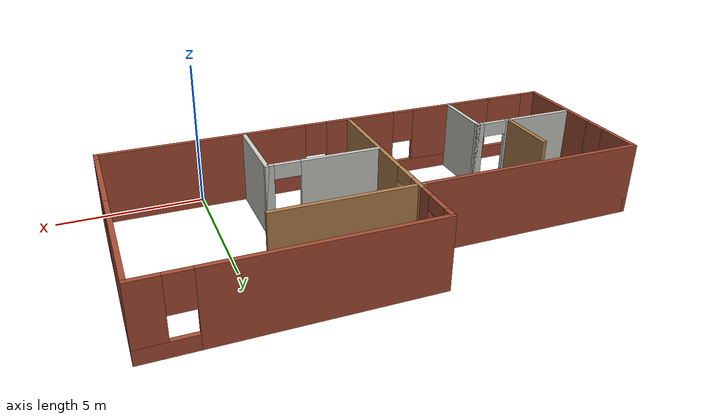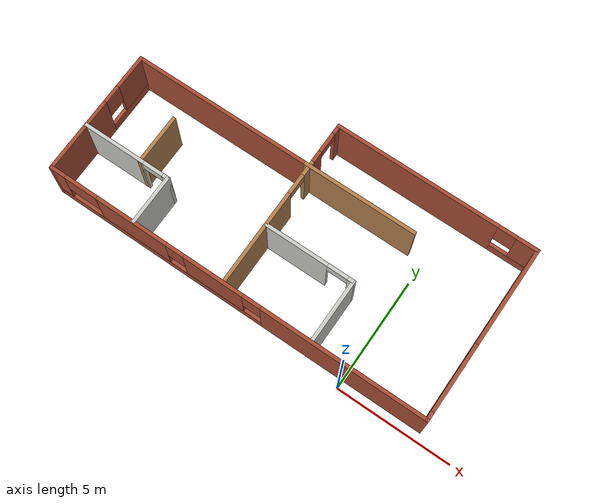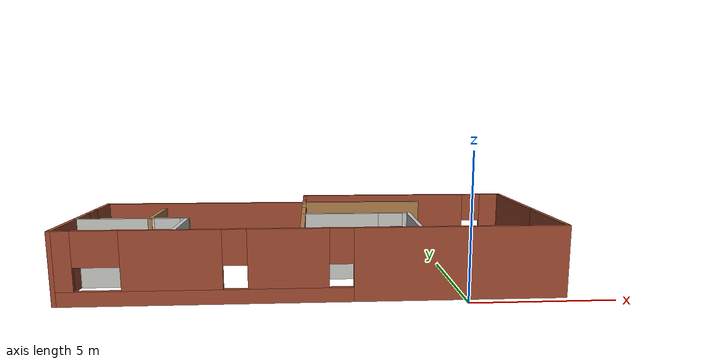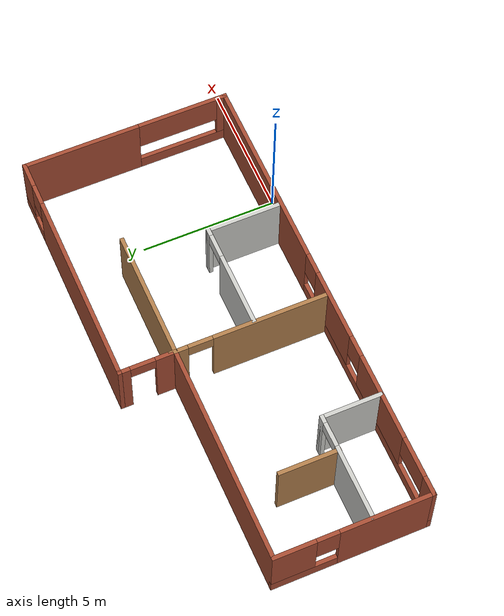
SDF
<?xml version='1.0'?>
<sdf version='1.6'>
  <model name='building'>
    <pose frame=''>-5.02487 4.21539 0 0 -0 0</pose>
    <link name='Wall_0'>
      <pose frame=''>4 3.8 0 0 -0 0</pose>
      <visual name='Wall_0_Visual_0'>
        <pose frame=''>-0.880795 0 1.25 0 -0 0</pose>
        <geometry>
          <box>
            <size>7.23841 0.15 2.5</size>
          </box>
        </geometry>
        <material>
          <script>
            <uri>file://media/materials/scripts/gazebo.material</uri>
            <name>Gazebo/Bricks</name>
          </script>
          <ambient>1 1 1 1</ambient>
        </material>
        <meta>
          <layer>0</layer>
        </meta>
      </visual>
      <collision name='Wall_0_Collision_0'>
        <geometry>
          <box>
            <size>7.23841 0.15 2.5</size>
          </box>
        </geometry>
        <pose frame=''>-0.880795 0 1.25 0 -0 0</pose>
      </collision>
      <visual name='Wall_0_Visual_1'>
        <pose frame=''>3.61921 0 0.25 0 -0 0</pose>
        <geometry>
          <box>
            <size>1.76159 0.15 0.5</size>
          </box>
        </geometry>
        <material>
          <script>
            <uri>file://media/materials/scripts/gazebo.material</uri>
            <name>Gazebo/Bricks</name>
          </script>
          <ambient>1 1 1 1</ambient>
        </material>
        <meta>
          <layer>0</layer>
        </meta>
      </visual>
      <collision name='Wall_0_Collision_1'>
        <geometry>
          <box>
            <size>1.76159 0.15 0.5</size>
          </box>
        </geometry>
        <pose frame=''>3.61921 0 0.25 0 -0 0</pose>
      </collision>
      <visual name='Wall_0_Visual_2'>
        <pose frame=''>4.01921 0 1.5 0 -0 0</pose>
        <geometry>
          <box>
            <size>0.96159 0.15 2</size>
          </box>
        </geometry>
        <material>
          <script>
            <uri>file://media/materials/scripts/gazebo.material</uri>
            <name>Gazebo/Bricks</name>
          </script>
          <ambient>1 1 1 1</ambient>
        </material>
        <meta>
          <layer>0</layer>
        </meta>
      </visual>
      <collision name='Wall_0_Collision_2'>
        <geometry>
          <box>
            <size>0.96159 0.15 2</size>
          </box>
        </geometry>
        <pose frame=''>4.01921 0 1.5 0 -0 0</pose>
      </collision>
      <visual name='Wall_0_Visual_3'>
        <pose frame=''>3.13841 0 1.9 0 -0 0</pose>
        <geometry>
          <box>
            <size>0.8 0.15 1.2</size>
          </box>
        </geometry>
        <material>
          <script>
            <uri>file://media/materials/scripts/gazebo.material</uri>
            <name>Gazebo/Bricks</name>
          </script>
          <ambient>1 1 1 1</ambient>
        </material>
        <meta>
          <layer>0</layer>
        </meta>
      </visual>
      <collision name='Wall_0_Collision_3'>
        <geometry>
          <box>
            <size>0.8 0.15 1.2</size>
          </box>
        </geometry>
        <pose frame=''>3.13841 0 1.9 0 -0 0</pose>
      </collision>
    </link>
    <link name='Wall_1'>
      <pose frame=''>8.425 0 0 0 0 -1.5708</pose>
      <visual name='Wall_1_Visual_0'>
        <pose frame=''>-1.69542 0 1.25 0 -0 0</pose>
        <geometry>
          <box>
            <size>4.35915 0.15 2.5</size>
          </box>
        </geometry>
        <material>
          <script>
            <uri>file://media/materials/scripts/gazebo.material</uri>
            <name>Gazebo/Bricks</name>
          </script>
          <ambient>1 1 1 1</ambient>
        </material>
        <meta>
          <layer>0</layer>
        </meta>
      </visual>
      <collision name='Wall_1_Collision_0'>
        <geometry>
          <box>
            <size>4.35915 0.15 2.5</size>
          </box>
        </geometry>
        <pose frame=''>-1.69542 0 1.25 0 -0 0</pose>
      </collision>
      <visual name='Wall_1_Visual_1'>
        <pose frame=''>2.17957 0 0.25 0 -0 0</pose>
        <geometry>
          <box>
            <size>3.39085 0.15 0.5</size>
          </box>
        </geometry>
        <material>
          <script>
            <uri>file://media/materials/scripts/gazebo.material</uri>
            <name>Gazebo/Bricks</name>
          </script>
          <ambient>1 1 1 1</ambient>
        </material>
        <meta>
          <layer>0</layer>
        </meta>
      </visual>
      <collision name='Wall_1_Collision_1'>
        <geometry>
          <box>
            <size>3.39085 0.15 0.5</size>
          </box>
        </geometry>
        <pose frame=''>2.17957 0 0.25 0 -0 0</pose>
      </collision>
      <visual name='Wall_1_Visual_2'>
        <pose frame=''>3.6617 0 1.5 0 -0 0</pose>
        <geometry>
          <box>
            <size>0.426599 0.15 2</size>
          </box>
        </geometry>
        <material>
          <script>
            <uri>file://media/materials/scripts/gazebo.material</uri>
            <name>Gazebo/Bricks</name>
          </script>
          <ambient>1 1 1 1</ambient>
        </material>
        <meta>
          <layer>0</layer>
        </meta>
      </visual>
      <collision name='Wall_1_Collision_2'>
        <geometry>
          <box>
            <size>0.426599 0.15 2</size>
          </box>
        </geometry>
        <pose frame=''>3.6617 0 1.5 0 -0 0</pose>
      </collision>
      <visual name='Wall_1_Visual_3'>
        <pose frame=''>1.96628 0 1.9 0 -0 0</pose>
        <geometry>
          <box>
            <size>2.96425 0.15 1.2</size>
          </box>
        </geometry>
        <material>
          <script>
            <uri>file://media/materials/scripts/gazebo.material</uri>
            <name>Gazebo/Bricks</name>
          </script>
          <ambient>1 1 1 1</ambient>
        </material>
        <meta>
          <layer>0</layer>
        </meta>
      </visual>
      <collision name='Wall_1_Collision_3'>
        <geometry>
          <box>
            <size>2.96425 0.15 1.2</size>
          </box>
        </geometry>
        <pose frame=''>1.96628 0 1.9 0 -0 0</pose>
      </collision>
    </link>
    <link name='Wall_19'>
      <collision name='Wall_19_Collision'>
        <geometry>
          <box>
            <size>5 0.15 2.5</size>
          </box>
        </geometry>
        <pose frame=''>0 0 1.25 0 -0 0</pose>
      </collision>
      <visual name='Wall_19_Visual'>
        <pose frame=''>0 0 1.25 0 -0 0</pose>
        <geometry>
          <box>
            <size>5 0.15 2.5</size>
          </box>
        </geometry>
        <material>
          <script>
            <uri>file://media/materials/scripts/gazebo.material</uri>
            <name>Gazebo/Wood</name>
          </script>
          <ambient>1 1 1 1</ambient>
        </material>
        <meta>
          <layer>0</layer>
        </meta>
      </visual>
      <pose frame=''>1.85 1.8 0 0 -0 0</pose>
    </link>
    <link name='Wall_2'>
      <pose frame=''>0 -3.8 0 0 -0 3.14159</pose>
      <visual name='Wall_2_Visual_0'>
        <pose frame=''>-4.87885 0 1.25 0 -0 0</pose>
        <geometry>
          <box>
            <size>7.24229 0.15 2.5</size>
          </box>
        </geometry>
        <material>
          <script>
            <uri>file://media/materials/scripts/gazebo.material</uri>
            <name>Gazebo/Bricks</name>
          </script>
          <ambient>1 1 1 1</ambient>
        </material>
        <meta>
          <layer>0</layer>
        </meta>
      </visual>
      <collision name='Wall_2_Collision_0'>
        <geometry>
          <box>
            <size>7.24229 0.15 2.5</size>
          </box>
        </geometry>
        <pose frame=''>-4.87885 0 1.25 0 -0 0</pose>
      </collision>
      <visual name='Wall_2_Visual_1'>
        <pose frame=''>3.62115 0 0.25 0 -0 0</pose>
        <geometry>
          <box>
            <size>9.75771 0.15 0.5</size>
          </box>
        </geometry>
        <material>
          <script>
            <uri>file://media/materials/scripts/gazebo.material</uri>
            <name>Gazebo/Bricks</name>
          </script>
          <ambient>1 1 1 1</ambient>
        </material>
        <meta>
          <layer>0</layer>
        </meta>
      </visual>
      <collision name='Wall_2_Collision_1'>
        <geometry>
          <box>
            <size>9.75771 0.15 0.5</size>
          </box>
        </geometry>
        <pose frame=''>3.62115 0 0.25 0 -0 0</pose>
      </collision>
      <visual name='Wall_2_Visual_2'>
        <pose frame=''>0.877088 0 1.5 0 -0 0</pose>
        <geometry>
          <box>
            <size>2.66959 0.15 2</size>
          </box>
        </geometry>
        <material>
          <script>
            <uri>file://media/materials/scripts/gazebo.material</uri>
            <name>Gazebo/Bricks</name>
          </script>
          <ambient>1 1 1 1</ambient>
        </material>
        <meta>
          <layer>0</layer>
        </meta>
      </visual>
      <collision name='Wall_2_Collision_2'>
        <geometry>
          <box>
            <size>2.66959 0.15 2</size>
          </box>
        </geometry>
        <pose frame=''>0.877088 0 1.5 0 -0 0</pose>
      </collision>
      <visual name='Wall_2_Visual_3'>
        <pose frame=''>4.64106 0 1.5 0 -0 0</pose>
        <geometry>
          <box>
            <size>3.25836 0.15 2</size>
          </box>
        </geometry>
        <material>
          <script>
            <uri>file://media/materials/scripts/gazebo.material</uri>
            <name>Gazebo/Bricks</name>
          </script>
          <ambient>1 1 1 1</ambient>
        </material>
        <meta>
          <layer>0</layer>
        </meta>
      </visual>
      <collision name='Wall_2_Collision_3'>
        <geometry>
          <box>
            <size>3.25836 0.15 2</size>
          </box>
        </geometry>
        <pose frame=''>4.64106 0 1.5 0 -0 0</pose>
      </collision>
      <visual name='Wall_2_Visual_4'>
        <pose frame=''>8.13512 0 1.5 0 -0 0</pose>
        <geometry>
          <box>
            <size>0.729757 0.15 2</size>
          </box>
        </geometry>
        <material>
          <script>
            <uri>file://media/materials/scripts/gazebo.material</uri>
            <name>Gazebo/Bricks</name>
          </script>
          <ambient>1 1 1 1</ambient>
        </material>
        <meta>
          <layer>0</layer>
        </meta>
      </visual>
      <collision name='Wall_2_Collision_4'>
        <geometry>
          <box>
            <size>0.729757 0.15 2</size>
          </box>
        </geometry>
        <pose frame=''>8.13512 0 1.5 0 -0 0</pose>
      </collision>
      <visual name='Wall_2_Visual_5'>
        <pose frame=''>-0.857708 0 1.9 0 -0 0</pose>
        <geometry>
          <box>
            <size>0.8 0.15 1.2</size>
          </box>
        </geometry>
        <material>
          <script>
            <uri>file://media/materials/scripts/gazebo.material</uri>
            <name>Gazebo/Bricks</name>
          </script>
          <ambient>1 1 1 1</ambient>
        </material>
        <meta>
          <layer>0</layer>
        </meta>
      </visual>
      <collision name='Wall_2_Collision_5'>
        <geometry>
          <box>
            <size>0.8 0.15 1.2</size>
          </box>
        </geometry>
        <pose frame=''>-0.857708 0 1.9 0 -0 0</pose>
      </collision>
      <visual name='Wall_2_Visual_6'>
        <pose frame=''>2.61188 0 1.9 0 -0 0</pose>
        <geometry>
          <box>
            <size>0.8 0.15 1.2</size>
          </box>
        </geometry>
        <material>
          <script>
            <uri>file://media/materials/scripts/gazebo.material</uri>
            <name>Gazebo/Bricks</name>
          </script>
          <ambient>1 1 1 1</ambient>
        </material>
        <meta>
          <layer>0</layer>
        </meta>
      </visual>
      <collision name='Wall_2_Collision_6'>
        <geometry>
          <box>
            <size>0.8 0.15 1.2</size>
          </box>
        </geometry>
        <pose frame=''>2.61188 0 1.9 0 -0 0</pose>
      </collision>
      <visual name='Wall_2_Visual_7'>
        <pose frame=''>7.02024 0 1.9 0 -0 0</pose>
        <geometry>
          <box>
            <size>1.5 0.15 1.2</size>
          </box>
        </geometry>
        <material>
          <script>
            <uri>file://media/materials/scripts/gazebo.material</uri>
            <name>Gazebo/Bricks</name>
          </script>
          <ambient>1 1 1 1</ambient>
        </material>
        <meta>
          <layer>0</layer>
        </meta>
      </visual>
      <collision name='Wall_2_Collision_7'>
        <geometry>
          <box>
            <size>1.5 0.15 1.2</size>
          </box>
        </geometry>
        <pose frame=''>7.02024 0 1.9 0 -0 0</pose>
      </collision>
    </link>
    <link name='Wall_3'>
      <pose frame=''>-8.425 -1 0 0 -0 1.5708</pose>
      <visual name='Wall_3_Visual_0'>
        <pose frame=''>-1.18298 0 1.25 0 -0 0</pose>
        <geometry>
          <box>
            <size>3.38403 0.15 2.5</size>
          </box>
        </geometry>
        <material>
          <script>
            <uri>file://media/materials/scripts/gazebo.material</uri>
            <name>Gazebo/Bricks</name>
          </script>
          <ambient>1 1 1 1</ambient>
        </material>
        <meta>
          <layer>0</layer>
        </meta>
      </visual>
      <collision name='Wall_3_Collision_0'>
        <geometry>
          <box>
            <size>3.38403 0.15 2.5</size>
          </box>
        </geometry>
        <pose frame=''>-1.18298 0 1.25 0 -0 0</pose>
      </collision>
      <visual name='Wall_3_Visual_1'>
        <pose frame=''>1.69202 0 0.25 0 -0 0</pose>
        <geometry>
          <box>
            <size>2.36597 0.15 0.5</size>
          </box>
        </geometry>
        <material>
          <script>
            <uri>file://media/materials/scripts/gazebo.material</uri>
            <name>Gazebo/Bricks</name>
          </script>
          <ambient>1 1 1 1</ambient>
        </material>
        <meta>
          <layer>0</layer>
        </meta>
      </visual>
      <collision name='Wall_3_Collision_1'>
        <geometry>
          <box>
            <size>2.36597 0.15 0.5</size>
          </box>
        </geometry>
        <pose frame=''>1.69202 0 0.25 0 -0 0</pose>
      </collision>
      <visual name='Wall_3_Visual_2'>
        <pose frame=''>2.09201 0 1.5 0 -0 0</pose>
        <geometry>
          <box>
            <size>1.56597 0.15 2</size>
          </box>
        </geometry>
        <material>
          <script>
            <uri>file://media/materials/scripts/gazebo.material</uri>
            <name>Gazebo/Bricks</name>
          </script>
          <ambient>1 1 1 1</ambient>
        </material>
        <meta>
          <layer>0</layer>
        </meta>
      </visual>
      <collision name='Wall_3_Collision_2'>
        <geometry>
          <box>
            <size>1.56597 0.15 2</size>
          </box>
        </geometry>
        <pose frame=''>2.09201 0 1.5 0 -0 0</pose>
      </collision>
      <visual name='Wall_3_Visual_3'>
        <pose frame=''>0.909029 0 1.9 0 -0 0</pose>
        <geometry>
          <box>
            <size>0.8 0.15 1.2</size>
          </box>
        </geometry>
        <material>
          <script>
            <uri>file://media/materials/scripts/gazebo.material</uri>
            <name>Gazebo/Bricks</name>
          </script>
          <ambient>1 1 1 1</ambient>
        </material>
        <meta>
          <layer>0</layer>
        </meta>
      </visual>
      <collision name='Wall_3_Collision_3'>
        <geometry>
          <box>
            <size>0.8 0.15 1.2</size>
          </box>
        </geometry>
        <pose frame=''>0.909029 0 1.9 0 -0 0</pose>
      </collision>
    </link>
    <link name='Wall_33'>
      <pose frame=''>-6.46953 -1.66385 0 0 -0 0</pose>
      <visual name='Wall_33_Visual_0'>
        <pose frame=''>-0.603054 0 1.25 0 -0 0</pose>
        <geometry>
          <box>
            <size>2.79389 0.15 2.5</size>
          </box>
        </geometry>
        <material>
          <script>
            <uri>file://media/materials/scripts/gazebo.material</uri>
            <name>Gazebo/CeilingTiled</name>
          </script>
          <ambient>1 1 1 1</ambient>
        </material>
        <meta>
          <layer>0</layer>
        </meta>
      </visual>
      <collision name='Wall_33_Collision_0'>
        <geometry>
          <box>
            <size>2.79389 0.15 2.5</size>
          </box>
        </geometry>
        <pose frame=''>-0.603054 0 1.25 0 -0 0</pose>
      </collision>
      <visual name='Wall_33_Visual_1'>
        <pose frame=''>1.84695 0 1.25 0 -0 0</pose>
        <geometry>
          <box>
            <size>0.306107 0.15 2.5</size>
          </box>
        </geometry>
        <material>
          <script>
            <uri>file://media/materials/scripts/gazebo.material</uri>
            <name>Gazebo/CeilingTiled</name>
          </script>
          <ambient>1 1 1 1</ambient>
        </material>
        <meta>
          <layer>0</layer>
        </meta>
      </visual>
      <collision name='Wall_33_Collision_1'>
        <geometry>
          <box>
            <size>0.306107 0.15 2.5</size>
          </box>
        </geometry>
        <pose frame=''>1.84695 0 1.25 0 -0 0</pose>
      </collision>
      <visual name='Wall_33_Visual_2'>
        <pose frame=''>1.24389 0 2.25 0 -0 0</pose>
        <geometry>
          <box>
            <size>0.9 0.15 0.5</size>
          </box>
        </geometry>
        <material>
          <script>
            <uri>file://media/materials/scripts/gazebo.material</uri>
            <name>Gazebo/CeilingTiled</name>
          </script>
          <ambient>1 1 1 1</ambient>
        </material>
        <meta>
          <layer>0</layer>
        </meta>
      </visual>
      <collision name='Wall_33_Collision_2'>
        <geometry>
          <box>
            <size>0.9 0.15 0.5</size>
          </box>
        </geometry>
        <pose frame=''>1.24389 0 2.25 0 -0 0</pose>
      </collision>
    </link>
    <link name='Wall_34'>
      <collision name='Wall_34_Collision'>
        <geometry>
          <box>
            <size>2.25 0.15 2.5</size>
          </box>
        </geometry>
        <pose frame=''>0 0 1.25 0 -0 0</pose>
      </collision>
      <visual name='Wall_34_Visual'>
        <pose frame=''>0 0 1.25 0 -0 0</pose>
        <geometry>
          <box>
            <size>2.25 0.15 2.5</size>
          </box>
        </geometry>
        <material>
          <script>
            <uri>file://media/materials/scripts/gazebo.material</uri>
            <name>Gazebo/CeilingTiled</name>
          </script>
          <ambient>1 1 1 1</ambient>
        </material>
        <meta>
          <layer>0</layer>
        </meta>
      </visual>
      <pose frame=''>-4.54453 -2.71385 0 0 0 -1.5708</pose>
    </link>
    <link name='Wall_36'>
      <collision name='Wall_36_Collision'>
        <geometry>
          <box>
            <size>2.25 0.15 2.5</size>
          </box>
        </geometry>
        <pose frame=''>0 0 1.25 0 -0 0</pose>
      </collision>
      <visual name='Wall_36_Visual'>
        <pose frame=''>0 0 1.25 0 -0 0</pose>
        <geometry>
          <box>
            <size>2.25 0.15 2.5</size>
          </box>
        </geometry>
        <material>
          <script>
            <uri>file://media/materials/scripts/gazebo.material</uri>
            <name>Gazebo/Wood</name>
          </script>
          <ambient>1 1 1 1</ambient>
        </material>
        <meta>
          <layer>0</layer>
        </meta>
      </visual>
      <pose frame=''>-5.82704 -0.623224 0 0 0 -1.5708</pose>
    </link>
    <link name='Wall_4'>
      <collision name='Wall_4_Collision'>
        <geometry>
          <box>
            <size>8 0.15 2.5</size>
          </box>
        </geometry>
        <pose frame=''>0 0 1.25 0 -0 0</pose>
      </collision>
      <visual name='Wall_4_Visual'>
        <pose frame=''>0 0 1.25 0 -0 0</pose>
        <geometry>
          <box>
            <size>8 0.15 2.5</size>
          </box>
        </geometry>
        <material>
          <script>
            <uri>file://media/materials/scripts/gazebo.material</uri>
            <name>Gazebo/Bricks</name>
          </script>
          <ambient>1 1 1 1</ambient>
        </material>
        <meta>
          <layer>0</layer>
        </meta>
      </visual>
      <pose frame=''>-4.5 1.8 0 0 -0 0</pose>
    </link>
    <link name='Wall_42'>
      <pose frame=''>1.55679 -1.06246 0 0 -0 0</pose>
      <visual name='Wall_42_Visual_0'>
        <pose frame=''>-0.603053 0 1.25 0 -0 0</pose>
        <geometry>
          <box>
            <size>2.79389 0.15 2.5</size>
          </box>
        </geometry>
        <material>
          <script>
            <uri>file://media/materials/scripts/gazebo.material</uri>
            <name>Gazebo/CeilingTiled</name>
          </script>
          <ambient>1 1 1 1</ambient>
        </material>
        <meta>
          <layer>0</layer>
        </meta>
      </visual>
      <collision name='Wall_42_Collision_0'>
        <geometry>
          <box>
            <size>2.79389 0.15 2.5</size>
          </box>
        </geometry>
        <pose frame=''>-0.603053 0 1.25 0 -0 0</pose>
      </collision>
      <visual name='Wall_42_Visual_1'>
        <pose frame=''>1.84695 0 1.25 0 -0 0</pose>
        <geometry>
          <box>
            <size>0.306107 0.15 2.5</size>
          </box>
        </geometry>
        <material>
          <script>
            <uri>file://media/materials/scripts/gazebo.material</uri>
            <name>Gazebo/CeilingTiled</name>
          </script>
          <ambient>1 1 1 1</ambient>
        </material>
        <meta>
          <layer>0</layer>
        </meta>
      </visual>
      <collision name='Wall_42_Collision_1'>
        <geometry>
          <box>
            <size>0.306107 0.15 2.5</size>
          </box>
        </geometry>
        <pose frame=''>1.84695 0 1.25 0 -0 0</pose>
      </collision>
      <visual name='Wall_42_Visual_2'>
        <pose frame=''>1.24389 0 2.25 0 -0 0</pose>
        <geometry>
          <box>
            <size>0.9 0.15 0.5</size>
          </box>
        </geometry>
        <material>
          <script>
            <uri>file://media/materials/scripts/gazebo.material</uri>
            <name>Gazebo/CeilingTiled</name>
          </script>
          <ambient>1 1 1 1</ambient>
        </material>
        <meta>
          <layer>0</layer>
        </meta>
      </visual>
      <collision name='Wall_42_Collision_2'>
        <geometry>
          <box>
            <size>0.9 0.15 0.5</size>
          </box>
        </geometry>
        <pose frame=''>1.24389 0 2.25 0 -0 0</pose>
      </collision>
    </link>
    <link name='Wall_43'>
      <collision name='Wall_43_Collision'>
        <geometry>
          <box>
            <size>2.75 0.15 2.5</size>
          </box>
        </geometry>
        <pose frame=''>0 0 1.25 0 -0 0</pose>
      </collision>
      <visual name='Wall_43_Visual'>
        <pose frame=''>0 0 1.25 0 -0 0</pose>
        <geometry>
          <box>
            <size>2.75 0.15 2.5</size>
          </box>
        </geometry>
        <material>
          <script>
            <uri>file://media/materials/scripts/gazebo.material</uri>
            <name>Gazebo/CeilingTiled</name>
          </script>
          <ambient>1 1 1 1</ambient>
        </material>
        <meta>
          <layer>0</layer>
        </meta>
      </visual>
      <pose frame=''>3.48178 -2.36246 0 0 0 -1.5708</pose>
    </link>
    <link name='Wall_45'>
      <pose frame=''>-0.425 2.875 0 0 0 -1.5708</pose>
      <visual name='Wall_45_Visual_0'>
        <pose frame=''>-0.773908 0 1.25 0 -0 0</pose>
        <geometry>
          <box>
            <size>0.452183 0.15 2.5</size>
          </box>
        </geometry>
        <material>
          <script>
            <uri>file://media/materials/scripts/gazebo.material</uri>
            <name>Gazebo/Bricks</name>
          </script>
          <ambient>1 1 1 1</ambient>
        </material>
        <meta>
          <layer>0</layer>
        </meta>
      </visual>
      <collision name='Wall_45_Collision_0'>
        <geometry>
          <box>
            <size>0.452183 0.15 2.5</size>
          </box>
        </geometry>
        <pose frame=''>-0.773908 0 1.25 0 -0 0</pose>
      </collision>
      <visual name='Wall_45_Visual_1'>
        <pose frame=''>0.676092 0 1.25 0 -0 0</pose>
        <geometry>
          <box>
            <size>0.647817 0.15 2.5</size>
          </box>
        </geometry>
        <material>
          <script>
            <uri>file://media/materials/scripts/gazebo.material</uri>
            <name>Gazebo/Bricks</name>
          </script>
          <ambient>1 1 1 1</ambient>
        </material>
        <meta>
          <layer>0</layer>
        </meta>
      </visual>
      <collision name='Wall_45_Collision_1'>
        <geometry>
          <box>
            <size>0.647817 0.15 2.5</size>
          </box>
        </geometry>
        <pose frame=''>0.676092 0 1.25 0 -0 0</pose>
      </collision>
      <visual name='Wall_45_Visual_2'>
        <pose frame=''>-0.097817 0 2.25 0 -0 0</pose>
        <geometry>
          <box>
            <size>0.9 0.15 0.5</size>
          </box>
        </geometry>
        <material>
          <script>
            <uri>file://media/materials/scripts/gazebo.material</uri>
            <name>Gazebo/Bricks</name>
          </script>
          <ambient>1 1 1 1</ambient>
        </material>
        <meta>
          <layer>0</layer>
        </meta>
      </visual>
      <collision name='Wall_45_Collision_2'>
        <geometry>
          <box>
            <size>0.9 0.15 0.5</size>
          </box>
        </geometry>
        <pose frame=''>-0.097817 0 2.25 0 -0 0</pose>
      </collision>
    </link>
    <link name='Wall_47'>
      <pose frame=''>-0.425 -0.85 0 0 0 -1.5708</pose>
      <visual name='Wall_47_Visual_0'>
        <pose frame=''>-2.5365 0 1.25 0 -0 0</pose>
        <geometry>
          <box>
            <size>0.676998 0.15 2.5</size>
          </box>
        </geometry>
        <material>
          <script>
            <uri>file://media/materials/scripts/gazebo.material</uri>
            <name>Gazebo/Wood</name>
          </script>
          <ambient>1 1 1 1</ambient>
        </material>
        <meta>
          <layer>0</layer>
        </meta>
      </visual>
      <collision name='Wall_47_Collision_0'>
        <geometry>
          <box>
            <size>0.676998 0.15 2.5</size>
          </box>
        </geometry>
        <pose frame=''>-2.5365 0 1.25 0 -0 0</pose>
      </collision>
      <visual name='Wall_47_Visual_1'>
        <pose frame=''>0.788499 0 1.25 0 -0 0</pose>
        <geometry>
          <box>
            <size>4.173 0.15 2.5</size>
          </box>
        </geometry>
        <material>
          <script>
            <uri>file://media/materials/scripts/gazebo.material</uri>
            <name>Gazebo/Wood</name>
          </script>
          <ambient>1 1 1 1</ambient>
        </material>
        <meta>
          <layer>0</layer>
        </meta>
      </visual>
      <collision name='Wall_47_Collision_1'>
        <geometry>
          <box>
            <size>4.173 0.15 2.5</size>
          </box>
        </geometry>
        <pose frame=''>0.788499 0 1.25 0 -0 0</pose>
      </collision>
      <visual name='Wall_47_Visual_2'>
        <pose frame=''>-1.748 0 2.25 0 -0 0</pose>
        <geometry>
          <box>
            <size>0.9 0.15 0.5</size>
          </box>
        </geometry>
        <material>
          <script>
            <uri>file://media/materials/scripts/gazebo.material</uri>
            <name>Gazebo/Wood</name>
          </script>
          <ambient>1 1 1 1</ambient>
        </material>
        <meta>
          <layer>0</layer>
        </meta>
      </visual>
      <collision name='Wall_47_Collision_2'>
        <geometry>
          <box>
            <size>0.9 0.15 0.5</size>
          </box>
        </geometry>
        <pose frame=''>-1.748 0 2.25 0 -0 0</pose>
      </collision>
    </link>
    <static>1</static>
  </model>
</sdf>
